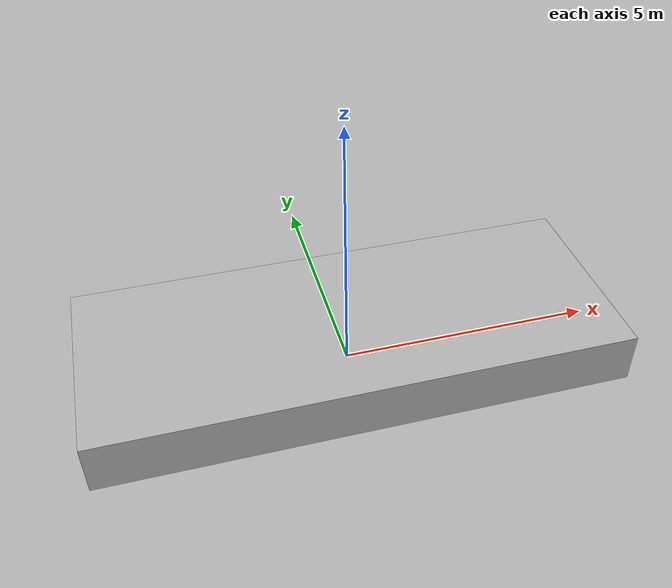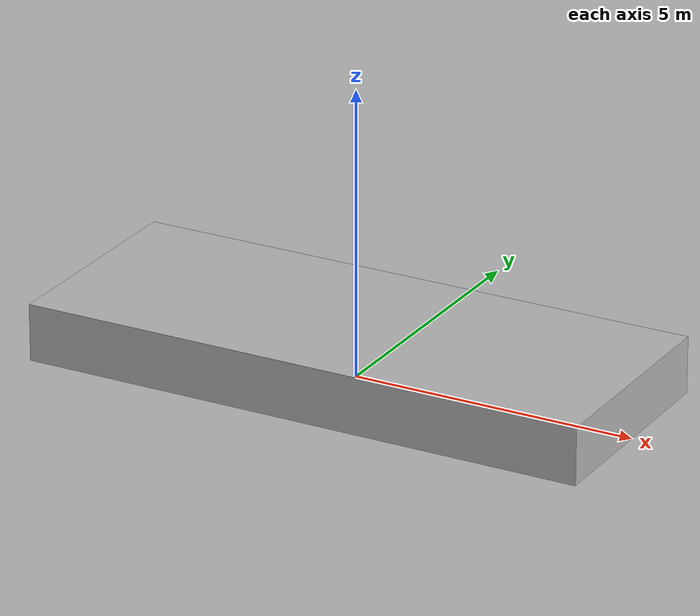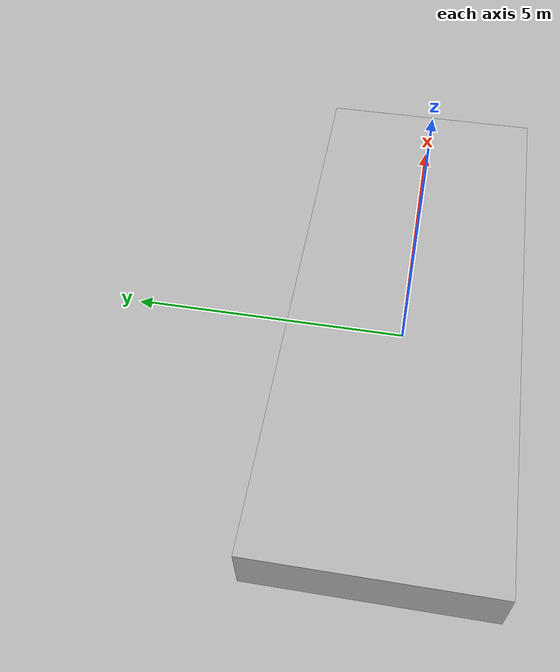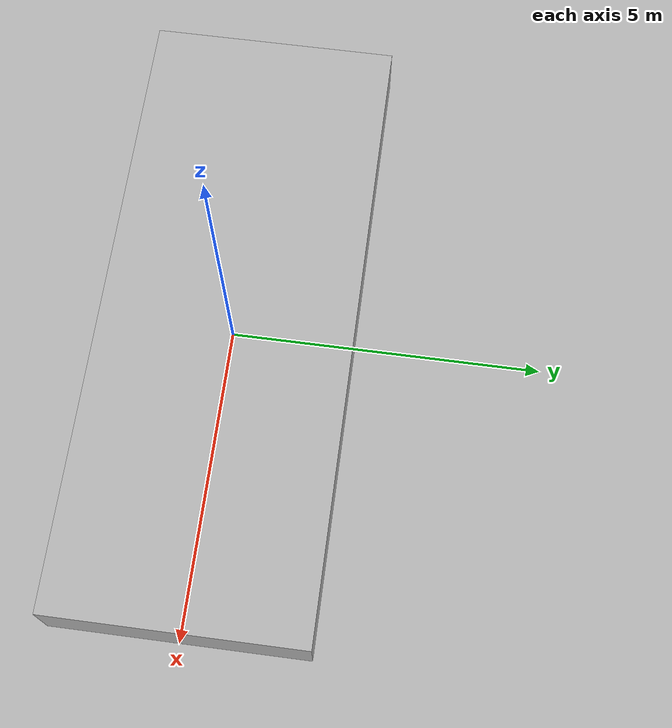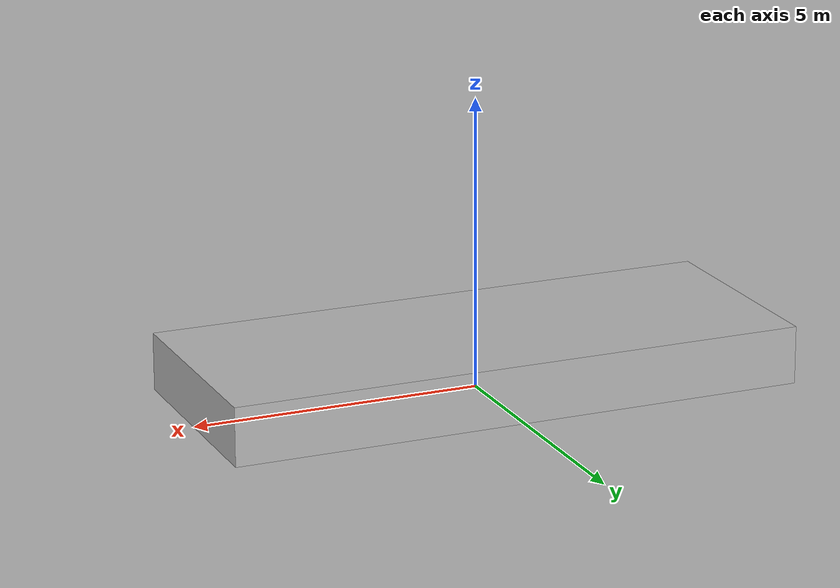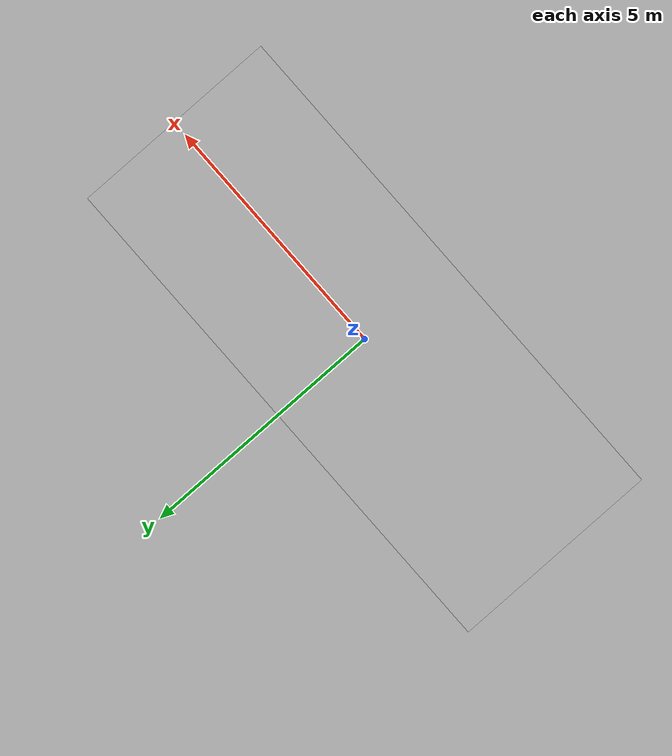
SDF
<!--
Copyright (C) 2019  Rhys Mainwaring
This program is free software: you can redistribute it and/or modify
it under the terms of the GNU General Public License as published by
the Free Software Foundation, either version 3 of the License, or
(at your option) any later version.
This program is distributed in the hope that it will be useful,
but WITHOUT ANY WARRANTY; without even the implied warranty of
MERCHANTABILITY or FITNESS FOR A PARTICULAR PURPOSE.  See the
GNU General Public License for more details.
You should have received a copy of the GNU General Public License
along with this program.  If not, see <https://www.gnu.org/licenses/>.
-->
<?xml version="1.0" ?>
<sdf version="1.6">
  <world name="box_world">

    <!-- GUI -->
    <gui>
      <plugin name="keyboard_gui_plugin" filename="libKeyboardGUIPlugin.so"/>
      <camera name='user_camera'>
        <pose frame=''>73.3604 -0.353679 10.7644 0 0.271643 3.09219</pose>
        <view_controller>orbit</view_controller>
        <projection_type>perspective</projection_type>
      </camera>
    </gui>

    <!-- Scene -->
    <scene>
      <sky>
        <time>10</time>
        <sunrise>6</sunrise>
        <sunset>18</sunset>
        <clouds>
          <speed>12</speed>
          <direction>1.57079</direction>
        </clouds>
      </sky>
      <grid>false</grid>
      <origin_visual>false</origin_visual>
    </scene>

    <!-- Lights -->
    <include>
      <uri>model://sun</uri>
    </include>

    <!-- World models  -->
    <include>
      <uri>model://ocean</uri>
    </include>

    <include>
      <uri>model://box</uri>
      <name>box</name>
      <pose>0 0 0 0 0 -0 0</pose>
    </include>

  </world>
</sdf>

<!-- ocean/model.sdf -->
<sdf version="1.6">
    <model name="ocean">
        <static>true</static>
        <link name="link">
            <visual name="visual">
                <geometry>
                    <mesh>
                        <uri>meshes/waterlow_small.dae</uri>
                    </mesh>
                </geometry>
                <plugin filename="gz-sim-shader-param-system" name="gz::sim::systems::ShaderParam">
                    <shader language="glsl">
                        <vertex>materials/programs/GerstnerWaves_vs_330.glsl</vertex>
                        <fragment>materials/programs/GerstnerWaves_fs_330.glsl</fragment>
                    </shader>
                    <shader language="metal">
                        <vertex>materials/programs/GerstnerWaves_vs.metal</vertex>
                        <fragment>materials/programs/GerstnerWaves_fs.metal</fragment>
                    </shader>
                    <param>
                        <shader>vertex</shader>
                        <name>Nwaves</name>
                        <type>int</type>
                        <value>0</value>
                    </param>
                    <param>
                        <shader>vertex</shader>
                        <name>rescale</name>
                        <type>float</type>
                        <value>0.125</value>
                    </param>
                    <param>
                        <shader>vertex</shader>
                        <name>bumpScale</name>
                        <type>float_array</type>
                        <value>75 75</value>
                    </param>
                    <param>
                        <shader>vertex</shader>
                        <name>bumpSpeed</name>
                        <type>float_array</type>
                        <value>0.01 0.0</value>
                    </param>
                    <param>
                        <shader>vertex</shader>
                        <name>amplitude</name>
                        <type>float_array</type>
                        <value>0.42 0.28, 0.21</value>
                    </param>
                    <param>
                        <shader>vertex</shader>
                        <name>wavenumber</name>
                        <type>float_array</type>
                        <value>0.028 0.0896 0.0504</value>
                    </param>
                    <param>
                        <shader>vertex</shader>
                        <name>omega</name>
                        <type>float_array</type>
                        <value>0.5 1.7 1.0</value>
                    </param>
                    <param>
                        <shader>vertex</shader>
                        <name>dir0</name>
                        <type>float_array</type>
                        <value>-1.0 0.0</value>
                    </param>
                    <param>
                        <shader>vertex</shader>
                        <name>dir1</name>
                        <type>float_array</type>
                        <value>-0.7 0.7</value>
                    </param>
                    <param>
                        <shader>vertex</shader>
                        <name>dir2</name>
                        <type>float_array</type>
                        <value>0.7 0.7</value>
                    </param>
                    <param>
                        <shader>vertex</shader>
                        <name>steepness</name>
                        <type>float_array</type>
                        <value>1.0 1.5 0.8</value>
                    </param>
                    <param>
                        <shader>vertex</shader>
                        <name>tau</name>
                        <type>float</type>
                        <value>2.0</value>
                    </param>
                    <param>
                        <shader>vertex</shader>
                        <name>camera_position_object_space</name>
                    </param>
                    <param>
                        <shader>vertex</shader>
                        <name>worldviewproj_matrix</name>
                    </param>
                    <param>
                        <shader>vertex</shader>
                        <name>t</name>
                        <value>TIME</value>
                    </param>
                    <param>
                        <shader>fragment</shader>
                        <name>hdrMultiplier</name>
                        <type>float</type>
                        <value>0.4</value>
                    </param>
                    <param>
                        <shader>fragment</shader>
                        <name>fresnelPower</name>
                        <type>float</type>
                        <value>5.0</value>
                    </param>
                    <param>
                        <shader>fragment</shader>
                        <name>shallowColor</name>
                        <type>float_array</type>
                        <value>0.0 0.1 0.2 1.0</value>
                    </param>
                    <param>
                        <shader>fragment</shader>
                        <name>deepColor</name>
                        <type>float_array</type>
                        <value>0.0 0.05 0.02 1.0</value>
                    </param>
                    <param>
                        <shader>fragment</shader>
                        <name>cubeMap</name>
                        <type>texture_cube</type>
                        <value>materials/textures/skybox_lowres.dds</value>
                        <!-- arg: texture coord set index -->
                        <arg>1</arg>
                    </param>
                    <param>
                        <shader>fragment</shader>
                        <name>bumpMap</name>
                        <type>texture</type>
                        <value>materials/textures/wave_normals.dds</value>
                    </param>
                </plugin>
            </visual>
        </link>
    </model>
</sdf>

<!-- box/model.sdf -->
<sdf version="1.6">
  <model name="box">
    <static>false</static>
    <plugin name="hydrodynamics" filename="libHydrodynamicsPlugin.so">
      <!-- Wave Model -->
      <wave_model>ocean</wave_model>

      <!-- Hydrodynamics -->
      <damping_on>true</damping_on>
      <viscous_drag_on>true</viscous_drag_on>
      <pressure_drag_on>true</pressure_drag_on>
      <link_name>base_link</link_name>

      <!-- Markers -->
      <markers>
        <update_rate>30</update_rate>
        <water_patch>false</water_patch>
        <waterline>false</waterline>
        <underwater_surface>false</underwater_surface>
      </markers>
    </plugin>

    <link name="base_link">
      <visual name="base_visual">
        <geometry>
          <box>
            <size>10 4 2</size>
          </box>
        </geometry>
      </visual>

      <collision name="base_collision">
        <geometry>
          <box>
            <size>10 4 2</size>
          </box>
        </geometry>
      </collision>

      <!-- Mass and inertial assume volume is 0.25 densitity of water -->
      <inertial>
        <pose>0 0 0 0 0 0</pose>
        <mass>20000</mass>
        <inertia>
          <ixx>33333</ixx>
          <ixy>0.0</ixy>
          <ixz>0.0</ixz>
          <iyy>173333</iyy>
          <iyz>0.0</iyz>
          <izz>193333</izz>
        </inertia>
      </inertial>

    </link>
  </model>
</sdf>
